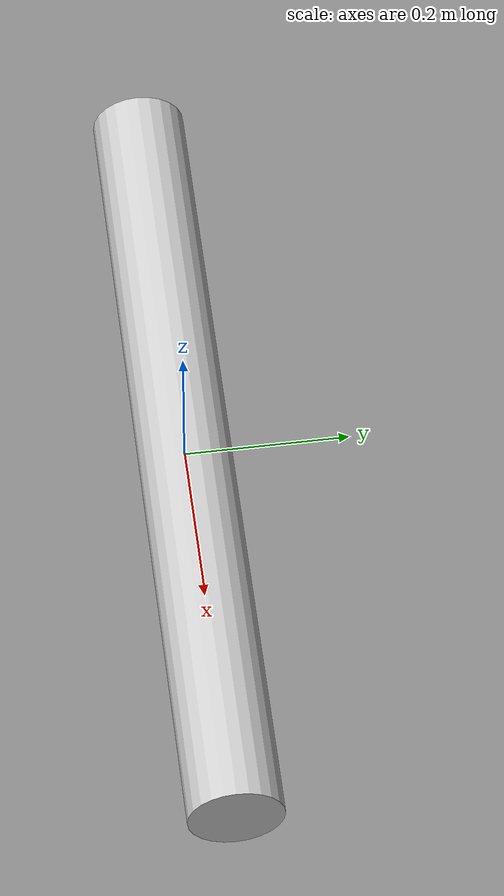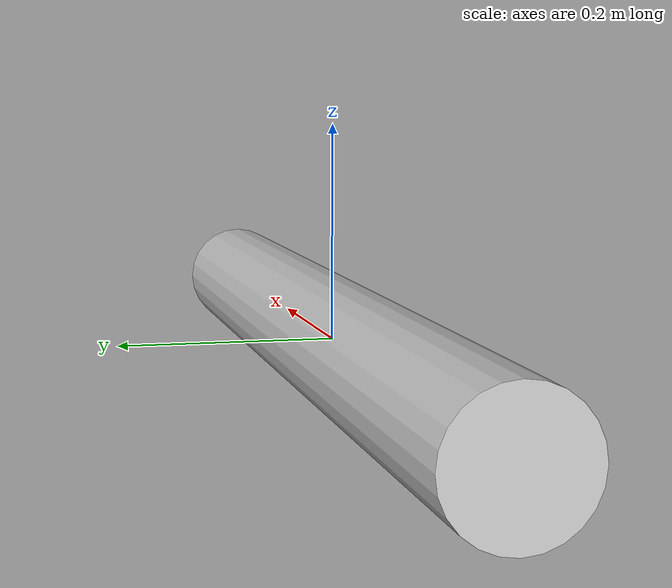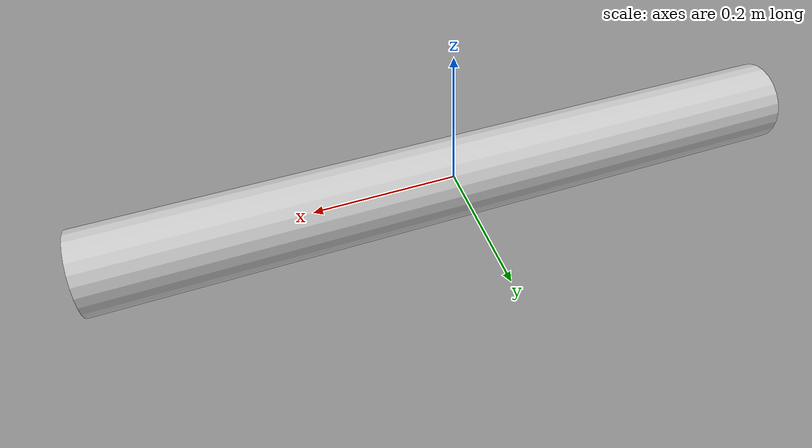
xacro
<?xml version="1.0"?>
<robot name="auv" xmlns:xacro="http://www.ros.org/wiki/xacro">

    <xacro:property name="base_length" value="1.0" />
    <xacro:property name="base_radius" value="0.057" />
    <xacro:property name="thruster_radius" value="0.045" />
    <xacro:property name="thruster_thickness" value="0.01" />
    <xacro:property name="thruster_offset" value="0.01" />

    <link name="base_link" />

    <joint name="base_to_cylinder" type="fixed">
        <parent link="base_link" />
        <child link="cylinder_link" />
        <origin xyz="0 0 0" rpy="0 0 0" />
    </joint>

    <link name="cylinder_link">
        <visual>
            <origin xyz="0 0 0" rpy="0 ${pi/2} 0" />
            <geometry>
                <cylinder length="${base_length}" radius="${base_radius}" />
            </geometry>
            <material name="color1">
                <color rgba="0.8 0.8 0.8 1" />
            </material>
        </visual>

        <collision>
            <geometry>
                <box size="${base_length} ${base_radius*2} ${base_radius*2}" />
            </geometry>
            <origin xyz="0 0 0" rpy="0 0 0" />
        </collision>

        <inertial>
            <!-- this will make it neutral. use collision as volume -->
            <mass value="12" />

            <inertia
                ixx="0.018"
                ixy="0.0"
                ixz="0.0"
                iyy="1.1"
                iyz="0.0"
                izz="1.1"
            />
            <origin xyz="0 0 -0.03" rpy="0 0 0" />
        </inertial>

    </link>

</robot>
